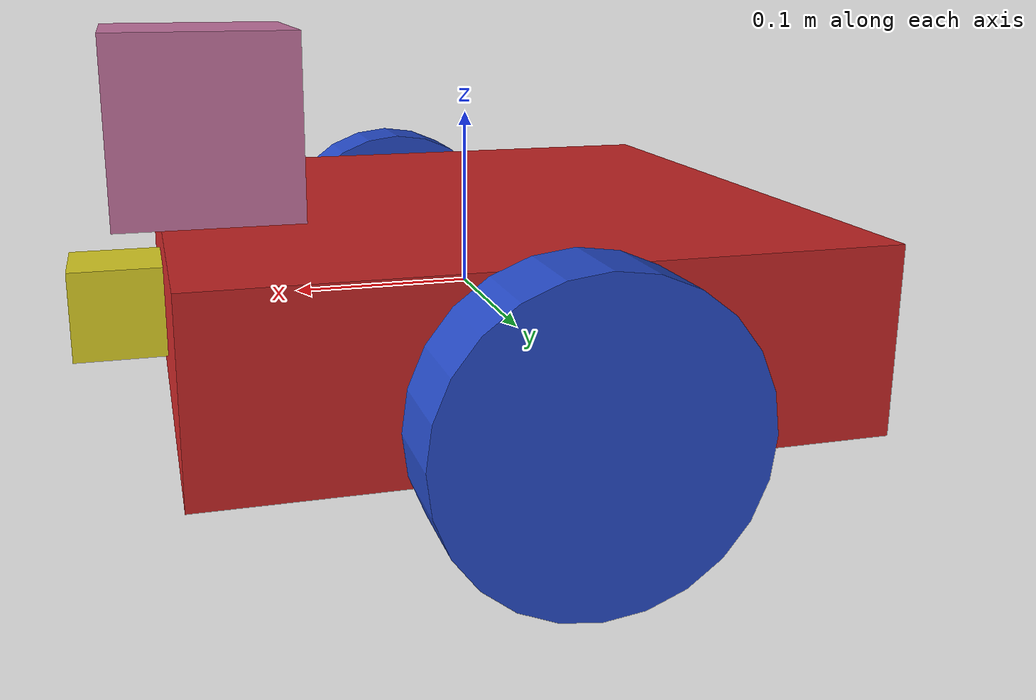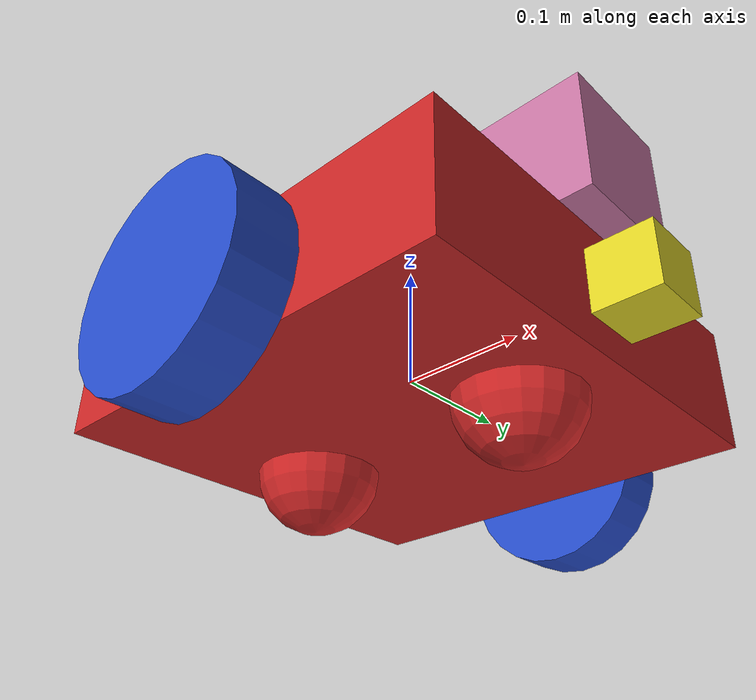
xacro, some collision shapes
<robot name="my_robot" xmlns:xacro="http://www.ros.org/wiki/xacro">

  <xacro:include filename="$(find my_robot)/urdf/my_robot.gazebo" />

  <link name="robot_footprint"></link>

  <joint name="robot_footprint_joint" type="fixed">
    <origin xyz="0 0 0" rpy="0 0 0" />
    <parent link="robot_footprint"/>
    <child link="chassis" />
  </joint>

  <link name='chassis'>
    <pose>0 0 0.1 0 0 0</pose>

    <inertial>
      <mass value="15.0"/>
      <origin xyz="0.0 0 0" rpy=" 0 0 0"/>
      <inertia
          ixx="0.1" ixy="0" ixz="0"
          iyy="0.1" iyz="0"
          izz="0.1"
      />
    </inertial>

    <collision name='collision'>
      <origin xyz="0 0 0" rpy=" 0 0 0"/>
      <geometry>
        <box size=".35 .35 .1"/>
      </geometry>
    </collision>

    <visual name='chassis_visual'>
      <origin xyz="0 0 0" rpy=" 0 0 0"/>
      <geometry>
        <box size=".35 .35 .1"/>
      </geometry>
    </visual>

    <collision name='back_caster_collision'>
      <origin xyz="-0.1 0 -0.05" rpy=" 0 0 0"/>
      <geometry>
        <sphere radius="0.048566"/>
      </geometry>
      <friction>
        <ode mu="0" mu2="0"/> <!-- Set friction coefficients to zero -->
      </friction>
    </collision>

    <visual name='back_caster_visual'>
      <origin xyz="-0.1 0 -0.05" rpy=" 0 0 0"/>
      <geometry>
        <sphere radius="0.048576"/>
      </geometry>
    </visual>

    <collision name='front_caster_collision'>
      <origin xyz="0.1 0 -0.05" rpy=" 0 0 0"/>
      <geometry>
        <sphere radius="0.048566"/>
      </geometry>
      <friction>
        <ode mu="0" mu2="0"/> <!-- Set friction coefficients to zero -->
      </friction>
    </collision>

    <visual name='front_caster_visual'>
      <origin xyz="0.1 0 -0.05" rpy=" 0 0 0"/>
      <geometry>
        <sphere radius="0.048576"/>
      </geometry>
    </visual>

  </link>

  <link name='left_wheel'>
    <inertial>
      <mass value="5.0"/>
      <origin xyz="0 0 0" rpy=" 0 1.5707 1.5707"/>
      <inertia
          ixx="0.1" ixy="0" ixz="0"
          iyy="0.1" iyz="0"
          izz="0.1"
      />
    </inertial>

    <visual name='left_wheel_visual'>
      <origin xyz="0 0 0" rpy=" 0 1.5707 1.5707"/>
      <geometry>
        <cylinder radius="0.08" length="0.045"/>
      </geometry>
    </visual>

    <collision name='left_wheel_collision'>
      <origin xyz="0 0 0" rpy=" 0 1.5707 1.5707"/>
      <geometry>
        <cylinder radius="0.08" length="0.045"/>
      </geometry>
    </collision>
  </link>

  <link name='right_wheel'>
    <inertial>
      <mass value="5.0"/>
      <origin xyz="0 0 0" rpy=" 0 1.5707 1.5707"/>
      <inertia
          ixx="0.1" ixy="0" ixz="0"
          iyy="0.1" iyz="0"
          izz="0.1"
      />
    </inertial>

    <visual name='right_wheel_visual'>
      <origin xyz="0 0 0" rpy=" 0 1.5707 1.5707"/>
      <geometry>
        <cylinder radius="0.08" length="0.045"/>
      </geometry>
    </visual>

    <collision name='right_wheel_collision'>
      <origin xyz="0 0 0" rpy=" 0 1.5707 1.5707"/>
      <geometry>
        <cylinder radius="0.08" length="0.045"/>
      </geometry>
    </collision>
  </link>

  <joint type="continuous" name="left_wheel_hinge">
    <origin xyz="0 0.207 -0.018576" rpy="0 0 0"/>
    <child link="left_wheel"/>
    <parent link="chassis"/>
    <axis xyz="0 1 0" rpy="0 0 0"/>
    <limit effort="10000" velocity="1000"/>
    <dynamics damping="1.0" friction="1.0"/>
  </joint>

  <joint type="continuous" name="right_wheel_hinge">
    <origin xyz="0 -0.207 -0.018576" rpy="0 0 0"/>
    <child link="right_wheel"/>
    <parent link="chassis"/>
    <axis xyz="0 1 0" rpy="0 0 0"/>
    <limit effort="10000" velocity="1000"/>
    <dynamics damping="1.0" friction="1.0"/>
  </joint>

  <link name='camera'>
    <origin xyz="0 0 0" rpy=" 0 0 0"/>

    <inertial>
      <mass value="0.1"/>
      <inertia
          ixx="1e-6" ixy="0" ixz="0"
          iyy="1e-6" iyz="0"
          izz="1e-6"
      />
    </inertial>

    <visual name='camera_visual'>
      <origin xyz="0 0 0" rpy=" 0 0 0"/>
      <geometry>
        <box size="0.05 0.05 0.05"/>
      </geometry>
    </visual>

    <collision name='camera_collision'>
      <origin xyz="0 0 0" rpy=" 0 0 0"/>
      <geometry>
        <box size="0.05 0.05 0.05"/>
      </geometry>
    </collision>
  </link>

  <joint type="fixed" name="camera_joint">
    <origin xyz="0.2 0 0" rpy="0 0 0"/>
    <child link="camera"/>
    <parent link="chassis"/>
    <axis xyz="0 1 0" rpy="0 0 0"/>
  </joint>

  <!-- Add RGB-D camera -->
  <joint name="camera_optical_joint" type="fixed">
    <origin xyz="0 0 0" rpy="-1.5707 0 -1.5707"/>
    <parent link="camera"/>
    <child link="camera_link_optical"/>
  </joint>

  <link name="camera_link_optical">
  </link>

  <link name='hokuyo'>
    <origin xyz="0 0 0" rpy=" 0 0 0"/>

    <inertial>
      <mass value="1e-5"/>
      <inertia
          ixx="1e-6" ixy="0" ixz="0"
          iyy="1e-6" iyz="0"
          izz="1e-6"
      />
    </inertial>

    <visual name='hokuyo_visual'>
      <origin xyz="0 0 0" rpy=" 0 0 0"/>
      <geometry>
        <mesh filename="package://my_robot/meshes/hokuyo.dae"/>
      </geometry>
    </visual>

    <collision name='hokuyo_collision'>
      <origin xyz="0 0 0" rpy=" 0 0 0"/>
      <geometry>
        <box size="0.1 0.1 0.1"/>
      </geometry>
    </collision>
  </link>

  <joint type="fixed" name="hokuyo_joint">
    <origin xyz="0.15 0 0.1" rpy="0 0 0"/>
    <child link="hokuyo"/>
    <parent link="chassis"/>
    <axis xyz="0 1 0" rpy="0 0 0"/>
  </joint>

  <gazebo reference="left_wheel">
    <material>Gazebo/Blue</material>
  </gazebo>

  <gazebo reference="right_wheel">
    <material>Gazebo/Blue</material>
  </gazebo>

  <gazebo reference="chassis">
    <material>Gazebo/Red</material>
  </gazebo>

  <gazebo reference="camera">
    <material>Gazebo/Yellow</material>
  </gazebo>

</robot>
